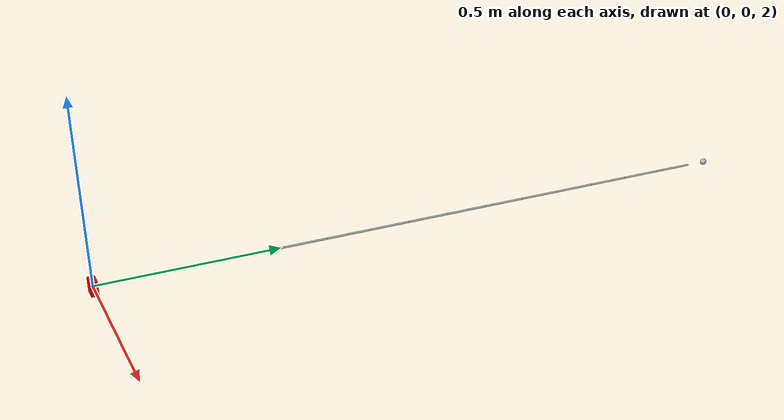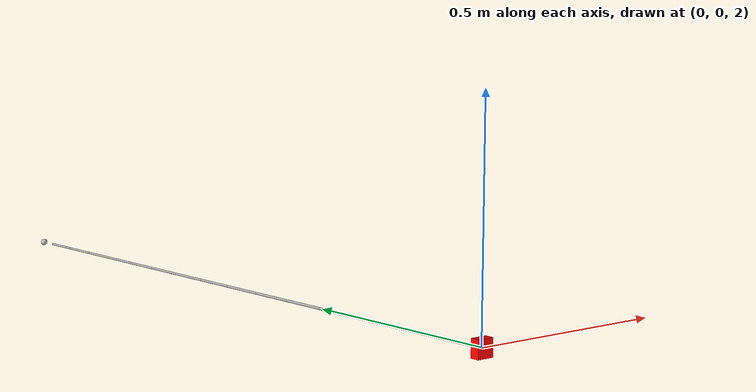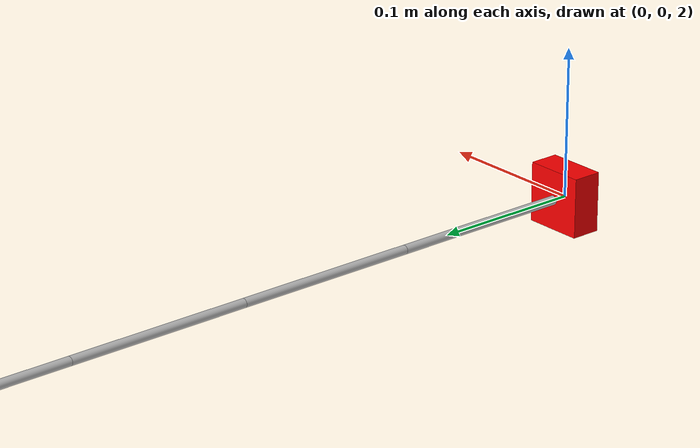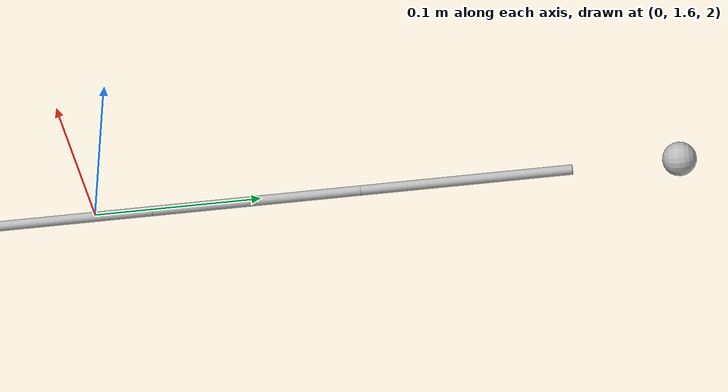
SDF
<sdf version='1.11'>
  <model name='cable2'>
    <joint name='fixed_to_world' type='fixed'>
      <pose relative_to='__model__'>0 0 2 1.57 0 0</pose>
      <parent>world</parent>
      <child>cable_base_link</child>
    </joint>
    <link name='cable_base_link'>
      <pose relative_to='fixed_to_world'>0 0 0 0 0 0</pose>
      <inertial>
        <pose>0 0 0 0 0 0</pose>
        <mass>0.01</mass>
        <inertia>
          <ixx>0.001</ixx>
          <ixy>0</ixy>
          <ixz>0</ixz>
          <iyy>0.001</iyy>
          <iyz>0</iyz>
          <izz>0.001</izz>
        </inertia>
      </inertial>
      <collision name='cable_base_link_collision'>
        <pose>0 0 0 0 0 0</pose>
        <geometry>
          <box>
            <size>0.04 0.04 0.02</size>
          </box>
        </geometry>
        <surface>
          <contact>
          </contact>
          <friction>
          </friction>
        </surface>
      </collision>
      <visual name='cable_base_link_visual'>
        <pose>0 0 0 0 0 0</pose>
        <geometry>
          <box>
            <size>0.04 0.04 0.02</size>
          </box>
        </geometry>
        <material>
          <script>
            <name>Gazebo/Gray</name>
            <uri>file://media/materials/scripts/gazebo.material</uri>
          </script>
          <diffuse>1 0 0 1</diffuse>
          <ambient>1 0 0 1</ambient>
        </material>
      </visual>
      <self_collide>false</self_collide>
    </link>
    <joint name='cable_base_to_seg_001' type='universal'>
      <pose relative_to='cable_base_link'>0 0 -0.01 0 0 0</pose>
      <parent>cable_base_link</parent>
      <child>seg_001</child>
      <axis>
        <xyz>1 0 0</xyz>
        <limit>
          <lower>-1.4</lower>
          <upper>1.4</upper>
          <effort>50</effort>
          <velocity>3</velocity>
        </limit>
        <dynamics>
          <damping>0.5</damping>
          <friction>0</friction>
        </dynamics>
      </axis>
      <axis2>
        <xyz>0 1 0</xyz>
        <limit>
          <lower>-1.4</lower>
          <upper>1.4</upper>
          <effort>50</effort>
          <velocity>3</velocity>
        </limit>
        <dynamics>
          <damping>0.5</damping>
          <friction>0</friction>
        </dynamics>
      </axis2>
    </joint>
    <link name="seg_001">
      <pose relative_to="cable_base_to_seg_001">0 0 -0.0625 0 0 0</pose>
      <inertial>
        <mass>0.0025</mass>
        <inertia>
          <ixx>3e-5</ixx>
          <ixy>0.0</ixy>
          <ixz>0.0</ixz>
          <iyy>3e-5</iyy>
          <iyz>0.0</iyz>
          <izz>1e-6</izz>
        </inertia>
      </inertial>
      <collision name="seg_001_col">
        <geometry>
          <box>
            <size>0.007 0.007 0.125</size>
          </box>
        </geometry>
        <surface>
          <contact>
            <collide_bitmask>0x00</collide_bitmask>
          </contact>
        </surface>
      </collision>
      <visual name="seg_001_vis">
        <geometry>
          <cylinder>
            <radius>0.003</radius>
            <length>0.125</length>
          </cylinder>
        </geometry>
      </visual>
      <self_collide>false</self_collide>
    </link>
    <joint name="seg_001_to_seg_002" type="universal">
      <pose relative_to="seg_001">0 0 -0.0625 0 0 0</pose>
      <parent>seg_001</parent>
      <child>seg_002</child>
      <axis>
        <xyz>1 0 0</xyz>
        <limit>
          <lower>-1.4</lower>
          <upper>1.4</upper>
          <effort>50</effort>
          <velocity>3</velocity>
        </limit>
        <dynamics>
          <damping>1.0</damping>
          <friction>0.003</friction>
        </dynamics>
      </axis>
      <axis2>
        <xyz>0 1 0</xyz>
        <limit>
          <lower>-1.4</lower>
          <upper>1.4</upper>
          <effort>50</effort>
          <velocity>3</velocity>
        </limit>
        <dynamics>
          <damping>1.0</damping>
          <friction>0.003</friction>
        </dynamics>
      </axis2>
    </joint>
    <link name="seg_002">
      <pose relative_to="seg_001_to_seg_002">0 0 -0.0625 0 0 0</pose>
      <inertial>
        <mass>0.0025</mass>
        <inertia>
          <ixx>3e-5</ixx>
          <ixy>0.0</ixy>
          <ixz>0.0</ixz>
          <iyy>3e-5</iyy>
          <iyz>0.0</iyz>
          <izz>1e-6</izz>
        </inertia>
      </inertial>
      <collision name="seg_002_col">
        <geometry>
          <box>
            <size>0.007 0.007 0.125</size>
          </box>
        </geometry>
        <surface>
          <contact>
            <collide_bitmask>0x00</collide_bitmask>
          </contact>
        </surface>
      </collision>
      <visual name="seg_002_vis">
        <geometry>
          <cylinder>
            <radius>0.003</radius>
            <length>0.125</length>
          </cylinder>
        </geometry>
      </visual>
      <self_collide>false</self_collide>
    </link>
    <joint name="seg_002_to_seg_003" type="universal">
      <pose relative_to="seg_002">0 0 -0.0625 0 0 0</pose>
      <parent>seg_002</parent>
      <child>seg_003</child>
      <axis>
        <xyz>1 0 0</xyz>
        <limit>
          <lower>-1.4</lower>
          <upper>1.4</upper>
          <effort>50</effort>
          <velocity>3</velocity>
        </limit>
        <dynamics>
          <damping>1.0</damping>
          <friction>0.003</friction>
        </dynamics>
      </axis>
      <axis2>
        <xyz>0 1 0</xyz>
        <limit>
          <lower>-1.4</lower>
          <upper>1.4</upper>
          <effort>50</effort>
          <velocity>3</velocity>
        </limit>
        <dynamics>
          <damping>1.0</damping>
          <friction>0.003</friction>
        </dynamics>
      </axis2>
    </joint>
    <link name="seg_003">
      <pose relative_to="seg_002_to_seg_003">0 0 -0.0625 0 0 0</pose>
      <inertial>
        <mass>0.0025</mass>
        <inertia>
          <ixx>3e-5</ixx>
          <ixy>0.0</ixy>
          <ixz>0.0</ixz>
          <iyy>3e-5</iyy>
          <iyz>0.0</iyz>
          <izz>1e-6</izz>
        </inertia>
      </inertial>
      <collision name="seg_003_col">
        <geometry>
          <box>
            <size>0.007 0.007 0.125</size>
          </box>
        </geometry>
        <surface>
          <contact>
            <collide_bitmask>0x00</collide_bitmask>
          </contact>
        </surface>
      </collision>
      <visual name="seg_003_vis">
        <geometry>
          <cylinder>
            <radius>0.003</radius>
            <length>0.125</length>
          </cylinder>
        </geometry>
      </visual>
      <self_collide>false</self_collide>
    </link>
    <joint name="seg_003_to_seg_004" type="universal">
      <pose relative_to="seg_003">0 0 -0.0625 0 0 0</pose>
      <parent>seg_003</parent>
      <child>seg_004</child>
      <axis>
        <xyz>1 0 0</xyz>
        <limit>
          <lower>-1.4</lower>
          <upper>1.4</upper>
          <effort>50</effort>
          <velocity>3</velocity>
        </limit>
        <dynamics>
          <damping>1.0</damping>
          <friction>0.003</friction>
        </dynamics>
      </axis>
      <axis2>
        <xyz>0 1 0</xyz>
        <limit>
          <lower>-1.4</lower>
          <upper>1.4</upper>
          <effort>50</effort>
          <velocity>3</velocity>
        </limit>
        <dynamics>
          <damping>1.0</damping>
          <friction>0.003</friction>
        </dynamics>
      </axis2>
    </joint>
    <link name="seg_004">
      <pose relative_to="seg_003_to_seg_004">0 0 -0.0625 0 0 0</pose>
      <inertial>
        <mass>0.0025</mass>
        <inertia>
          <ixx>3e-5</ixx>
          <ixy>0.0</ixy>
          <ixz>0.0</ixz>
          <iyy>3e-5</iyy>
          <iyz>0.0</iyz>
          <izz>1e-6</izz>
        </inertia>
      </inertial>
      <collision name="seg_004_col">
        <geometry>
          <box>
            <size>0.007 0.007 0.125</size>
          </box>
        </geometry>
        <surface>
          <contact>
            <collide_bitmask>0x00</collide_bitmask>
          </contact>
        </surface>
      </collision>
      <visual name="seg_004_vis">
        <geometry>
          <cylinder>
            <radius>0.003</radius>
            <length>0.125</length>
          </cylinder>
        </geometry>
      </visual>
      <self_collide>false</self_collide>
    </link>
    <joint name="seg_004_to_seg_005" type="universal">
      <pose relative_to="seg_004">0 0 -0.0625 0 0 0</pose>
      <parent>seg_004</parent>
      <child>seg_005</child>
      <axis>
        <xyz>1 0 0</xyz>
        <limit>
          <lower>-1.4</lower>
          <upper>1.4</upper>
          <effort>50</effort>
          <velocity>3</velocity>
        </limit>
        <dynamics>
          <damping>1.0</damping>
          <friction>0.003</friction>
        </dynamics>
      </axis>
      <axis2>
        <xyz>0 1 0</xyz>
        <limit>
          <lower>-1.4</lower>
          <upper>1.4</upper>
          <effort>50</effort>
          <velocity>3</velocity>
        </limit>
        <dynamics>
          <damping>1.0</damping>
          <friction>0.003</friction>
        </dynamics>
      </axis2>
    </joint>
    <link name="seg_005">
      <pose relative_to="seg_004_to_seg_005">0 0 -0.0625 0 0 0</pose>
      <inertial>
        <mass>0.0025</mass>
        <inertia>
          <ixx>3e-5</ixx>
          <ixy>0.0</ixy>
          <ixz>0.0</ixz>
          <iyy>3e-5</iyy>
          <iyz>0.0</iyz>
          <izz>1e-6</izz>
        </inertia>
      </inertial>
      <collision name="seg_005_col">
        <geometry>
          <box>
            <size>0.007 0.007 0.125</size>
          </box>
        </geometry>
        <surface>
          <contact>
            <collide_bitmask>0x00</collide_bitmask>
          </contact>
        </surface>
      </collision>
      <visual name="seg_005_vis">
        <geometry>
          <cylinder>
            <radius>0.003</radius>
            <length>0.125</length>
          </cylinder>
        </geometry>
      </visual>
      <self_collide>false</self_collide>
    </link>
    <joint name="seg_005_to_seg_006" type="universal">
      <pose relative_to="seg_005">0 0 -0.0625 0 0 0</pose>
      <parent>seg_005</parent>
      <child>seg_006</child>
      <axis>
        <xyz>1 0 0</xyz>
        <limit>
          <lower>-1.4</lower>
          <upper>1.4</upper>
          <effort>50</effort>
          <velocity>3</velocity>
        </limit>
        <dynamics>
          <damping>1.0</damping>
          <friction>0.003</friction>
        </dynamics>
      </axis>
      <axis2>
        <xyz>0 1 0</xyz>
        <limit>
          <lower>-1.4</lower>
          <upper>1.4</upper>
          <effort>50</effort>
          <velocity>3</velocity>
        </limit>
        <dynamics>
          <damping>1.0</damping>
          <friction>0.003</friction>
        </dynamics>
      </axis2>
    </joint>
    <link name="seg_006">
      <pose relative_to="seg_005_to_seg_006">0 0 -0.0625 0 0 0</pose>
      <inertial>
        <mass>0.0025</mass>
        <inertia>
          <ixx>3e-5</ixx>
          <ixy>0.0</ixy>
          <ixz>0.0</ixz>
          <iyy>3e-5</iyy>
          <iyz>0.0</iyz>
          <izz>1e-6</izz>
        </inertia>
      </inertial>
      <collision name="seg_006_col">
        <geometry>
          <box>
            <size>0.007 0.007 0.125</size>
          </box>
        </geometry>
        <surface>
          <contact>
            <collide_bitmask>0x00</collide_bitmask>
          </contact>
        </surface>
      </collision>
      <visual name="seg_006_vis">
        <geometry>
          <cylinder>
            <radius>0.003</radius>
            <length>0.125</length>
          </cylinder>
        </geometry>
      </visual>
      <self_collide>false</self_collide>
    </link>
    <joint name="seg_006_to_seg_007" type="universal">
      <pose relative_to="seg_006">0 0 -0.0625 0 0 0</pose>
      <parent>seg_006</parent>
      <child>seg_007</child>
      <axis>
        <xyz>1 0 0</xyz>
        <limit>
          <lower>-1.4</lower>
          <upper>1.4</upper>
          <effort>50</effort>
          <velocity>3</velocity>
        </limit>
        <dynamics>
          <damping>1.0</damping>
          <friction>0.003</friction>
        </dynamics>
      </axis>
      <axis2>
        <xyz>0 1 0</xyz>
        <limit>
          <lower>-1.4</lower>
          <upper>1.4</upper>
          <effort>50</effort>
          <velocity>3</velocity>
        </limit>
        <dynamics>
          <damping>1.0</damping>
          <friction>0.003</friction>
        </dynamics>
      </axis2>
    </joint>
    <link name="seg_007">
      <pose relative_to="seg_006_to_seg_007">0 0 -0.0625 0 0 0</pose>
      <inertial>
        <mass>0.0025</mass>
        <inertia>
          <ixx>3e-5</ixx>
          <ixy>0.0</ixy>
          <ixz>0.0</ixz>
          <iyy>3e-5</iyy>
          <iyz>0.0</iyz>
          <izz>1e-6</izz>
        </inertia>
      </inertial>
      <collision name="seg_007_col">
        <geometry>
          <box>
            <size>0.007 0.007 0.125</size>
          </box>
        </geometry>
        <surface>
          <contact>
            <collide_bitmask>0x00</collide_bitmask>
          </contact>
        </surface>
      </collision>
      <visual name="seg_007_vis">
        <geometry>
          <cylinder>
            <radius>0.003</radius>
            <length>0.125</length>
          </cylinder>
        </geometry>
      </visual>
      <self_collide>false</self_collide>
    </link>
    <joint name="seg_007_to_seg_008" type="universal">
      <pose relative_to="seg_007">0 0 -0.0625 0 0 0</pose>
      <parent>seg_007</parent>
      <child>seg_008</child>
      <axis>
        <xyz>1 0 0</xyz>
        <limit>
          <lower>-1.4</lower>
          <upper>1.4</upper>
          <effort>50</effort>
          <velocity>3</velocity>
        </limit>
        <dynamics>
          <damping>1.0</damping>
          <friction>0.003</friction>
        </dynamics>
      </axis>
      <axis2>
        <xyz>0 1 0</xyz>
        <limit>
          <lower>-1.4</lower>
          <upper>1.4</upper>
          <effort>50</effort>
          <velocity>3</velocity>
        </limit>
        <dynamics>
          <damping>1.0</damping>
          <friction>0.003</friction>
        </dynamics>
      </axis2>
    </joint>
    <link name="seg_008">
      <pose relative_to="seg_007_to_seg_008">0 0 -0.0625 0 0 0</pose>
      <inertial>
        <mass>0.0025</mass>
        <inertia>
          <ixx>3e-5</ixx>
          <ixy>0.0</ixy>
          <ixz>0.0</ixz>
          <iyy>3e-5</iyy>
          <iyz>0.0</iyz>
          <izz>1e-6</izz>
        </inertia>
      </inertial>
      <collision name="seg_008_col">
        <geometry>
          <box>
            <size>0.007 0.007 0.125</size>
          </box>
        </geometry>
        <surface>
          <contact>
            <collide_bitmask>0x00</collide_bitmask>
          </contact>
        </surface>
      </collision>
      <visual name="seg_008_vis">
        <geometry>
          <cylinder>
            <radius>0.003</radius>
            <length>0.125</length>
          </cylinder>
        </geometry>
      </visual>
      <self_collide>false</self_collide>
    </link>
    <joint name="seg_008_to_seg_009" type="universal">
      <pose relative_to="seg_008">0 0 -0.0625 0 0 0</pose>
      <parent>seg_008</parent>
      <child>seg_009</child>
      <axis>
        <xyz>1 0 0</xyz>
        <limit>
          <lower>-1.4</lower>
          <upper>1.4</upper>
          <effort>50</effort>
          <velocity>3</velocity>
        </limit>
        <dynamics>
          <damping>1.0</damping>
          <friction>0.003</friction>
        </dynamics>
      </axis>
      <axis2>
        <xyz>0 1 0</xyz>
        <limit>
          <lower>-1.4</lower>
          <upper>1.4</upper>
          <effort>50</effort>
          <velocity>3</velocity>
        </limit>
        <dynamics>
          <damping>1.0</damping>
          <friction>0.003</friction>
        </dynamics>
      </axis2>
    </joint>
    <link name="seg_009">
      <pose relative_to="seg_008_to_seg_009">0 0 -0.0625 0 0 0</pose>
      <inertial>
        <mass>0.0025</mass>
        <inertia>
          <ixx>3e-5</ixx>
          <ixy>0.0</ixy>
          <ixz>0.0</ixz>
          <iyy>3e-5</iyy>
          <iyz>0.0</iyz>
          <izz>1e-6</izz>
        </inertia>
      </inertial>
      <collision name="seg_009_col">
        <geometry>
          <box>
            <size>0.007 0.007 0.125</size>
          </box>
        </geometry>
        <surface>
          <contact>
            <collide_bitmask>0x00</collide_bitmask>
          </contact>
        </surface>
      </collision>
      <visual name="seg_009_vis">
        <geometry>
          <cylinder>
            <radius>0.003</radius>
            <length>0.125</length>
          </cylinder>
        </geometry>
      </visual>
      <self_collide>false</self_collide>
    </link>
    <joint name="seg_009_to_seg_010" type="universal">
      <pose relative_to="seg_009">0 0 -0.0625 0 0 0</pose>
      <parent>seg_009</parent>
      <child>seg_010</child>
      <axis>
        <xyz>1 0 0</xyz>
        <limit>
          <lower>-1.4</lower>
          <upper>1.4</upper>
          <effort>50</effort>
          <velocity>3</velocity>
        </limit>
        <dynamics>
          <damping>1.0</damping>
          <friction>0.003</friction>
        </dynamics>
      </axis>
      <axis2>
        <xyz>0 1 0</xyz>
        <limit>
          <lower>-1.4</lower>
          <upper>1.4</upper>
          <effort>50</effort>
          <velocity>3</velocity>
        </limit>
        <dynamics>
          <damping>1.0</damping>
          <friction>0.003</friction>
        </dynamics>
      </axis2>
    </joint>
    <link name="seg_010">
      <pose relative_to="seg_009_to_seg_010">0 0 -0.0625 0 0 0</pose>
      <inertial>
        <mass>0.0025</mass>
        <inertia>
          <ixx>3e-5</ixx>
          <ixy>0.0</ixy>
          <ixz>0.0</ixz>
          <iyy>3e-5</iyy>
          <iyz>0.0</iyz>
          <izz>1e-6</izz>
        </inertia>
      </inertial>
      <collision name="seg_010_col">
        <geometry>
          <box>
            <size>0.007 0.007 0.125</size>
          </box>
        </geometry>
        <surface>
          <contact>
            <collide_bitmask>0x00</collide_bitmask>
          </contact>
        </surface>
      </collision>
      <visual name="seg_010_vis">
        <geometry>
          <cylinder>
            <radius>0.003</radius>
            <length>0.125</length>
          </cylinder>
        </geometry>
      </visual>
      <self_collide>false</self_collide>
    </link>
    <joint name="seg_010_to_seg_011" type="universal">
      <pose relative_to="seg_010">0 0 -0.0625 0 0 0</pose>
      <parent>seg_010</parent>
      <child>seg_011</child>
      <axis>
        <xyz>1 0 0</xyz>
        <limit>
          <lower>-1.4</lower>
          <upper>1.4</upper>
          <effort>50</effort>
          <velocity>3</velocity>
        </limit>
        <dynamics>
          <damping>1.0</damping>
          <friction>0.003</friction>
        </dynamics>
      </axis>
      <axis2>
        <xyz>0 1 0</xyz>
        <limit>
          <lower>-1.4</lower>
          <upper>1.4</upper>
          <effort>50</effort>
          <velocity>3</velocity>
        </limit>
        <dynamics>
          <damping>1.0</damping>
          <friction>0.003</friction>
        </dynamics>
      </axis2>
    </joint>
    <link name="seg_011">
      <pose relative_to="seg_010_to_seg_011">0 0 -0.0625 0 0 0</pose>
      <inertial>
        <mass>0.0025</mass>
        <inertia>
          <ixx>3e-5</ixx>
          <ixy>0.0</ixy>
          <ixz>0.0</ixz>
          <iyy>3e-5</iyy>
          <iyz>0.0</iyz>
          <izz>1e-6</izz>
        </inertia>
      </inertial>
      <collision name="seg_011_col">
        <geometry>
          <box>
            <size>0.007 0.007 0.125</size>
          </box>
        </geometry>
        <surface>
          <contact>
            <collide_bitmask>0x00</collide_bitmask>
          </contact>
        </surface>
      </collision>
      <visual name="seg_011_vis">
        <geometry>
          <cylinder>
            <radius>0.003</radius>
            <length>0.125</length>
          </cylinder>
        </geometry>
      </visual>
      <self_collide>false</self_collide>
    </link>
    <joint name="seg_011_to_seg_012" type="universal">
      <pose relative_to="seg_011">0 0 -0.0625 0 0 0</pose>
      <parent>seg_011</parent>
      <child>seg_012</child>
      <axis>
        <xyz>1 0 0</xyz>
        <limit>
          <lower>-1.4</lower>
          <upper>1.4</upper>
          <effort>50</effort>
          <velocity>3</velocity>
        </limit>
        <dynamics>
          <damping>1.0</damping>
          <friction>0.003</friction>
        </dynamics>
      </axis>
      <axis2>
        <xyz>0 1 0</xyz>
        <limit>
          <lower>-1.4</lower>
          <upper>1.4</upper>
          <effort>50</effort>
          <velocity>3</velocity>
        </limit>
        <dynamics>
          <damping>1.0</damping>
          <friction>0.003</friction>
        </dynamics>
      </axis2>
    </joint>
    <link name="seg_012">
      <pose relative_to="seg_011_to_seg_012">0 0 -0.0625 0 0 0</pose>
      <inertial>
        <mass>0.0025</mass>
        <inertia>
          <ixx>3e-5</ixx>
          <ixy>0.0</ixy>
          <ixz>0.0</ixz>
          <iyy>3e-5</iyy>
          <iyz>0.0</iyz>
          <izz>1e-6</izz>
        </inertia>
      </inertial>
      <collision name="seg_012_col">
        <geometry>
          <box>
            <size>0.007 0.007 0.125</size>
          </box>
        </geometry>
        <surface>
          <contact>
            <collide_bitmask>0x00</collide_bitmask>
          </contact>
        </surface>
      </collision>
      <visual name="seg_012_vis">
        <geometry>
          <cylinder>
            <radius>0.003</radius>
            <length>0.125</length>
          </cylinder>
        </geometry>
      </visual>
      <self_collide>false</self_collide>
    </link>
    <joint name="seg_012_to_seg_013" type="universal">
      <pose relative_to="seg_012">0 0 -0.0625 0 0 0</pose>
      <parent>seg_012</parent>
      <child>seg_013</child>
      <axis>
        <xyz>1 0 0</xyz>
        <limit>
          <lower>-1.4</lower>
          <upper>1.4</upper>
          <effort>50</effort>
          <velocity>3</velocity>
        </limit>
        <dynamics>
          <damping>1.0</damping>
          <friction>0.003</friction>
        </dynamics>
      </axis>
      <axis2>
        <xyz>0 1 0</xyz>
        <limit>
          <lower>-1.4</lower>
          <upper>1.4</upper>
          <effort>50</effort>
          <velocity>3</velocity>
        </limit>
        <dynamics>
          <damping>1.0</damping>
          <friction>0.003</friction>
        </dynamics>
      </axis2>
    </joint>
    <link name="seg_013">
      <pose relative_to="seg_012_to_seg_013">0 0 -0.0625 0 0 0</pose>
      <inertial>
        <mass>0.0025</mass>
        <inertia>
          <ixx>3e-5</ixx>
          <ixy>0.0</ixy>
          <ixz>0.0</ixz>
          <iyy>3e-5</iyy>
          <iyz>0.0</iyz>
          <izz>1e-6</izz>
        </inertia>
      </inertial>
      <collision name="seg_013_col">
        <geometry>
          <box>
            <size>0.007 0.007 0.125</size>
          </box>
        </geometry>
        <surface>
          <contact>
            <collide_bitmask>0x00</collide_bitmask>
          </contact>
        </surface>
      </collision>
      <visual name="seg_013_vis">
        <geometry>
          <cylinder>
            <radius>0.003</radius>
            <length>0.125</length>
          </cylinder>
        </geometry>
      </visual>
      <self_collide>false</self_collide>
    </link>
    <joint name="seg_013_to_seg_014" type="universal">
      <pose relative_to="seg_013">0 0 -0.0625 0 0 0</pose>
      <parent>seg_013</parent>
      <child>seg_014</child>
      <axis>
        <xyz>1 0 0</xyz>
        <limit>
          <lower>-1.4</lower>
          <upper>1.4</upper>
          <effort>50</effort>
          <velocity>3</velocity>
        </limit>
        <dynamics>
          <damping>1.0</damping>
          <friction>0.003</friction>
        </dynamics>
      </axis>
      <axis2>
        <xyz>0 1 0</xyz>
        <limit>
          <lower>-1.4</lower>
          <upper>1.4</upper>
          <effort>50</effort>
          <velocity>3</velocity>
        </limit>
        <dynamics>
          <damping>1.0</damping>
          <friction>0.003</friction>
        </dynamics>
      </axis2>
    </joint>
    <link name="seg_014">
      <pose relative_to="seg_013_to_seg_014">0 0 -0.0625 0 0 0</pose>
      <inertial>
        <mass>0.0025</mass>
        <inertia>
          <ixx>3e-5</ixx>
          <ixy>0.0</ixy>
          <ixz>0.0</ixz>
          <iyy>3e-5</iyy>
          <iyz>0.0</iyz>
          <izz>1e-6</izz>
        </inertia>
      </inertial>
      <collision name="seg_014_col">
        <geometry>
          <box>
            <size>0.007 0.007 0.125</size>
          </box>
        </geometry>
        <surface>
          <contact>
            <collide_bitmask>0x00</collide_bitmask>
          </contact>
        </surface>
      </collision>
      <visual name="seg_014_vis">
        <geometry>
          <cylinder>
            <radius>0.003</radius>
            <length>0.125</length>
          </cylinder>
        </geometry>
      </visual>
      <self_collide>false</self_collide>
    </link>
    <joint name="seg_014_to_seg_015" type="universal">
      <pose relative_to="seg_014">0 0 -0.0625 0 0 0</pose>
      <parent>seg_014</parent>
      <child>seg_015</child>
      <axis>
        <xyz>1 0 0</xyz>
        <limit>
          <lower>-1.4</lower>
          <upper>1.4</upper>
          <effort>50</effort>
          <velocity>3</velocity>
        </limit>
        <dynamics>
          <damping>1.0</damping>
          <friction>0.003</friction>
        </dynamics>
      </axis>
      <axis2>
        <xyz>0 1 0</xyz>
        <limit>
          <lower>-1.4</lower>
          <upper>1.4</upper>
          <effort>50</effort>
          <velocity>3</velocity>
        </limit>
        <dynamics>
          <damping>1.0</damping>
          <friction>0.003</friction>
        </dynamics>
      </axis2>
    </joint>
    <link name="seg_015">
      <pose relative_to="seg_014_to_seg_015">0 0 -0.0625 0 0 0</pose>
      <inertial>
        <mass>0.0025</mass>
        <inertia>
          <ixx>3e-5</ixx>
          <ixy>0.0</ixy>
          <ixz>0.0</ixz>
          <iyy>3e-5</iyy>
          <iyz>0.0</iyz>
          <izz>1e-6</izz>
        </inertia>
      </inertial>
      <collision name="seg_015_col">
        <geometry>
          <box>
            <size>0.007 0.007 0.125</size>
          </box>
        </geometry>
        <surface>
          <contact>
            <collide_bitmask>0x00</collide_bitmask>
          </contact>
        </surface>
      </collision>
      <visual name="seg_015_vis">
        <geometry>
          <cylinder>
            <radius>0.003</radius>
            <length>0.125</length>
          </cylinder>
        </geometry>
      </visual>
      <self_collide>false</self_collide>
    </link>

    <joint name='seg_015_to_end_sphere' type='fixed'>
      <pose relative_to='seg_015'>0 0 -0.125 0 0 0</pose>
      <parent>seg_015</parent>
      <child>end_sphere</child>
    </joint>
    <link name='end_sphere'>
      <pose relative_to='seg_015_to_end_sphere'>0 0 0 0 0 0</pose>
      <inertial>
        <mass>0.005</mass>
        <inertia>
          <ixx>0.00027</ixx>
          <ixy>0.0</ixy>
          <ixz>0.0</ixz>
          <iyy>0.00027</iyy>
          <iyz>0.0</iyz>
          <izz>0.0000002</izz>
        </inertia>
      </inertial>
      <collision name='end_sphere_collision'>
        <geometry>
          <sphere>
            <radius>0.01</radius>
          </sphere>
        </geometry>
      </collision>
      <visual name='end_sphere_visual'>
        <geometry>
          <sphere>
            <radius>0.01</radius>
          </sphere>
        </geometry>
      </visual>
      <self_collide>false</self_collide>
    </link>

    <!-- Hydrodynamics drag for cable cylinders -->
    <plugin
        filename="gz-sim-hydrodynamics-system"
        name="gz::sim::systems::Hydrodynamics">
      <link_name>seg_001</link_name>
      <water_density>1025</water_density>
      <xU>-0.5</xU>
      <yV>-0.5</yV>
      <zW>-0.8</zW>
      <kP>-0.05</kP>
      <mQ>-0.05</mQ>
      <nR>-0.05</nR>
      <xUabsU>-2</xUabsU>
      <yVabsV>-2</yVabsV>
      <zWabsW>-3</zWabsW>
      <kPabsP>-0.1</kPabsP>
      <mQabsQ>-0.1</mQabsQ>
      <nRabsR>-0.1</nRabsR>
    </plugin>
    <plugin
        filename="gz-sim-hydrodynamics-system"
        name="gz::sim::systems::Hydrodynamics">
      <link_name>seg_002</link_name>
      <water_density>1025</water_density>
      <xU>-0.5</xU>
      <yV>-0.5</yV>
      <zW>-0.8</zW>
      <kP>-0.05</kP>
      <mQ>-0.05</mQ>
      <nR>-0.05</nR>
      <xUabsU>-2</xUabsU>
      <yVabsV>-2</yVabsV>
      <zWabsW>-3</zWabsW>
      <kPabsP>-0.1</kPabsP>
      <mQabsQ>-0.1</mQabsQ>
      <nRabsR>-0.1</nRabsR>
    </plugin>
    <plugin
        filename="gz-sim-hydrodynamics-system"
        name="gz::sim::systems::Hydrodynamics">
      <link_name>seg_003</link_name>
      <water_density>1025</water_density>
      <xU>-0.5</xU>
      <yV>-0.5</yV>
      <zW>-0.8</zW>
      <kP>-0.05</kP>
      <mQ>-0.05</mQ>
      <nR>-0.05</nR>
      <xUabsU>-2</xUabsU>
      <yVabsV>-2</yVabsV>
      <zWabsW>-3</zWabsW>
      <kPabsP>-0.1</kPabsP>
      <mQabsQ>-0.1</mQabsQ>
      <nRabsR>-0.1</nRabsR>
    </plugin>
    <plugin
        filename="gz-sim-hydrodynamics-system"
        name="gz::sim::systems::Hydrodynamics">
      <link_name>seg_004</link_name>
      <water_density>1025</water_density>
      <xU>-0.5</xU>
      <yV>-0.5</yV>
      <zW>-0.8</zW>
      <kP>-0.05</kP>
      <mQ>-0.05</mQ>
      <nR>-0.05</nR>
      <xUabsU>-2</xUabsU>
      <yVabsV>-2</yVabsV>
      <zWabsW>-3</zWabsW>
      <kPabsP>-0.1</kPabsP>
      <mQabsQ>-0.1</mQabsQ>
      <nRabsR>-0.1</nRabsR>
    </plugin>
    <plugin
        filename="gz-sim-hydrodynamics-system"
        name="gz::sim::systems::Hydrodynamics">
      <link_name>seg_005</link_name>
      <water_density>1025</water_density>
      <xU>-0.5</xU>
      <yV>-0.5</yV>
      <zW>-0.8</zW>
      <kP>-0.05</kP>
      <mQ>-0.05</mQ>
      <nR>-0.05</nR>
      <xUabsU>-2</xUabsU>
      <yVabsV>-2</yVabsV>
      <zWabsW>-3</zWabsW>
      <kPabsP>-0.1</kPabsP>
      <mQabsQ>-0.1</mQabsQ>
      <nRabsR>-0.1</nRabsR>
    </plugin>
    <plugin
        filename="gz-sim-hydrodynamics-system"
        name="gz::sim::systems::Hydrodynamics">
      <link_name>seg_006</link_name>
      <water_density>1025</water_density>
      <xU>-0.5</xU>
      <yV>-0.5</yV>
      <zW>-0.8</zW>
      <kP>-0.05</kP>
      <mQ>-0.05</mQ>
      <nR>-0.05</nR>
      <xUabsU>-2</xUabsU>
      <yVabsV>-2</yVabsV>
      <zWabsW>-3</zWabsW>
      <kPabsP>-0.1</kPabsP>
      <mQabsQ>-0.1</mQabsQ>
      <nRabsR>-0.1</nRabsR>
    </plugin>
    <plugin
        filename="gz-sim-hydrodynamics-system"
        name="gz::sim::systems::Hydrodynamics">
      <link_name>seg_007</link_name>
      <water_density>1025</water_density>
      <xU>-0.5</xU>
      <yV>-0.5</yV>
      <zW>-0.8</zW>
      <kP>-0.05</kP>
      <mQ>-0.05</mQ>
      <nR>-0.05</nR>
      <xUabsU>-2</xUabsU>
      <yVabsV>-2</yVabsV>
      <zWabsW>-3</zWabsW>
      <kPabsP>-0.1</kPabsP>
      <mQabsQ>-0.1</mQabsQ>
      <nRabsR>-0.1</nRabsR>
    </plugin>
    <plugin
        filename="gz-sim-hydrodynamics-system"
        name="gz::sim::systems::Hydrodynamics">
      <link_name>seg_008</link_name>
      <water_density>1025</water_density>
      <xU>-0.5</xU>
      <yV>-0.5</yV>
      <zW>-0.8</zW>
      <kP>-0.05</kP>
      <mQ>-0.05</mQ>
      <nR>-0.05</nR>
      <xUabsU>-2</xUabsU>
      <yVabsV>-2</yVabsV>
      <zWabsW>-3</zWabsW>
      <kPabsP>-0.1</kPabsP>
      <mQabsQ>-0.1</mQabsQ>
      <nRabsR>-0.1</nRabsR>
    </plugin>
    <plugin
        filename="gz-sim-hydrodynamics-system"
        name="gz::sim::systems::Hydrodynamics">
      <link_name>seg_009</link_name>
      <water_density>1025</water_density>
      <xU>-0.5</xU>
      <yV>-0.5</yV>
      <zW>-0.8</zW>
      <kP>-0.05</kP>
      <mQ>-0.05</mQ>
      <nR>-0.05</nR>
      <xUabsU>-2</xUabsU>
      <yVabsV>-2</yVabsV>
      <zWabsW>-3</zWabsW>
      <kPabsP>-0.1</kPabsP>
      <mQabsQ>-0.1</mQabsQ>
      <nRabsR>-0.1</nRabsR>
    </plugin>
    <plugin
        filename="gz-sim-hydrodynamics-system"
        name="gz::sim::systems::Hydrodynamics">
      <link_name>seg_010</link_name>
      <water_density>1025</water_density>
      <xU>-0.5</xU>
      <yV>-0.5</yV>
      <zW>-0.8</zW>
      <kP>-0.05</kP>
      <mQ>-0.05</mQ>
      <nR>-0.05</nR>
      <xUabsU>-2</xUabsU>
      <yVabsV>-2</yVabsV>
      <zWabsW>-3</zWabsW>
      <kPabsP>-0.1</kPabsP>
      <mQabsQ>-0.1</mQabsQ>
      <nRabsR>-0.1</nRabsR>
    </plugin>
    <plugin
        filename="gz-sim-hydrodynamics-system"
        name="gz::sim::systems::Hydrodynamics">
      <link_name>seg_011</link_name>
      <water_density>1025</water_density>
      <xU>-0.5</xU>
      <yV>-0.5</yV>
      <zW>-0.8</zW>
      <kP>-0.05</kP>
      <mQ>-0.05</mQ>
      <nR>-0.05</nR>
      <xUabsU>-2</xUabsU>
      <yVabsV>-2</yVabsV>
      <zWabsW>-3</zWabsW>
      <kPabsP>-0.1</kPabsP>
      <mQabsQ>-0.1</mQabsQ>
      <nRabsR>-0.1</nRabsR>
    </plugin>
    <plugin
        filename="gz-sim-hydrodynamics-system"
        name="gz::sim::systems::Hydrodynamics">
      <link_name>seg_012</link_name>
      <water_density>1025</water_density>
      <xU>-0.5</xU>
      <yV>-0.5</yV>
      <zW>-0.8</zW>
      <kP>-0.05</kP>
      <mQ>-0.05</mQ>
      <nR>-0.05</nR>
      <xUabsU>-2</xUabsU>
      <yVabsV>-2</yVabsV>
      <zWabsW>-3</zWabsW>
      <kPabsP>-0.1</kPabsP>
      <mQabsQ>-0.1</mQabsQ>
      <nRabsR>-0.1</nRabsR>
    </plugin>
    <plugin
        filename="gz-sim-hydrodynamics-system"
        name="gz::sim::systems::Hydrodynamics">
      <link_name>seg_013</link_name>
      <water_density>1025</water_density>
      <xU>-0.5</xU>
      <yV>-0.5</yV>
      <zW>-0.8</zW>
      <kP>-0.05</kP>
      <mQ>-0.05</mQ>
      <nR>-0.05</nR>
      <xUabsU>-2</xUabsU>
      <yVabsV>-2</yVabsV>
      <zWabsW>-3</zWabsW>
      <kPabsP>-0.1</kPabsP>
      <mQabsQ>-0.1</mQabsQ>
      <nRabsR>-0.1</nRabsR>
    </plugin>
    <plugin
        filename="gz-sim-hydrodynamics-system"
        name="gz::sim::systems::Hydrodynamics">
      <link_name>seg_014</link_name>
      <water_density>1025</water_density>
      <xU>-0.5</xU>
      <yV>-0.5</yV>
      <zW>-0.8</zW>
      <kP>-0.05</kP>
      <mQ>-0.05</mQ>
      <nR>-0.05</nR>
      <xUabsU>-2</xUabsU>
      <yVabsV>-2</yVabsV>
      <zWabsW>-3</zWabsW>
      <kPabsP>-0.1</kPabsP>
      <mQabsQ>-0.1</mQabsQ>
      <nRabsR>-0.1</nRabsR>
    </plugin>
    <plugin
        filename="gz-sim-hydrodynamics-system"
        name="gz::sim::systems::Hydrodynamics">
      <link_name>seg_015</link_name>
      <water_density>1025</water_density>
      <xU>-0.5</xU>
      <yV>-0.5</yV>
      <zW>-0.8</zW>
      <kP>-0.05</kP>
      <mQ>-0.05</mQ>
      <nR>-0.05</nR>
      <xUabsU>-2</xUabsU>
      <yVabsV>-2</yVabsV>
      <zWabsW>-3</zWabsW>
      <kPabsP>-0.1</kPabsP>
      <mQabsQ>-0.1</mQabsQ>
      <nRabsR>-0.1</nRabsR>
    </plugin>
  </model>
</sdf>
